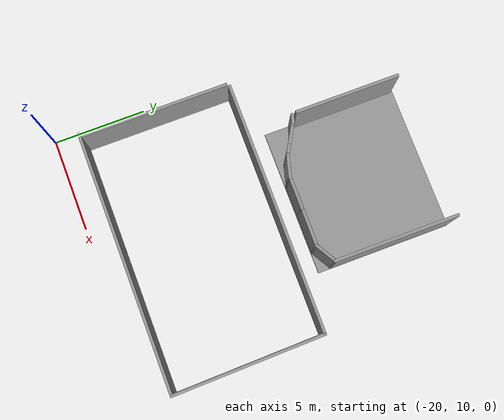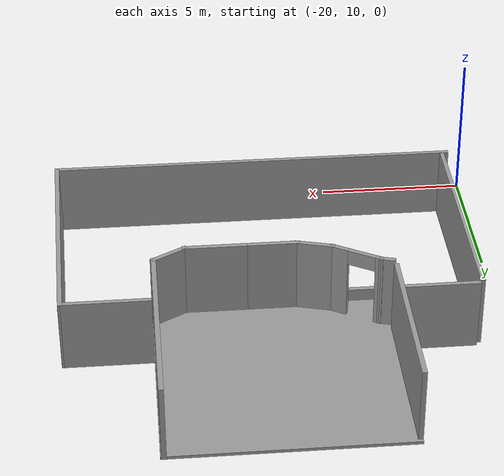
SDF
<?xml version='1.0'?>
<sdf version='1.6'>
  <model name='second_add_11'>
    <pose frame=''>-12.257 19.2956 0 0 -0 0</pose>
    <link name='Floor_3'>
      <collision name='Floor_3_Collision'>
        <geometry>
          <box>
            <size>7.43279 6.82745 0.1</size>
          </box>
        </geometry>
        <pose frame=''>0 0 0.05 0 -0 0</pose>
      </collision>
      <visual name='Floor_3_Visual'>
        <pose frame=''>0 0 0.05 0 -0 0</pose>
        <geometry>
          <box>
            <size>7.43279 6.82745 0.1</size>
          </box>
        </geometry>
        <material>
          <script>
            <uri>file://media/materials/scripts/gazebo.material</uri>
            <name>Gazebo/Grey</name>
          </script>
          <ambient>1 1 1 1</ambient>
        </material>
        <meta>
          <layer>1</layer>
        </meta>
      </visual>
      <pose frame=''>0.14842 4.41052 2.5 0 -0 0</pose>
    </link>
    <link name='Wall_12'>
      <collision name='Wall_12_Collision'>
        <geometry>
          <box>
            <size>13.5 0.15 2.5</size>
          </box>
        </geometry>
        <pose frame=''>0 0 1.25 0 -0 0</pose>
      </collision>
      <visual name='Wall_12_Visual'>
        <pose frame=''>0 0 1.25 0 -0 0</pose>
        <geometry>
          <box>
            <size>13.5 0.15 2.5</size>
          </box>
        </geometry>
        <material>
          <script>
            <uri>file://media/materials/scripts/gazebo.material</uri>
            <name>Gazebo/Grey</name>
          </script>
          <ambient>1 1 1 1</ambient>
        </material>
        <meta>
          <layer>0</layer>
        </meta>
      </visual>
      <pose frame=''>0.074673 0.243689 0 0 -0 3.14159</pose>
    </link>
    <link name='Wall_13'>
      <collision name='Wall_13_Collision'>
        <geometry>
          <box>
            <size>7.81583 0.15 2.5</size>
          </box>
        </geometry>
        <pose frame=''>0 0 1.25 0 -0 0</pose>
      </collision>
      <visual name='Wall_13_Visual'>
        <pose frame=''>0 0 1.25 0 -0 0</pose>
        <geometry>
          <box>
            <size>7.81583 0.15 2.5</size>
          </box>
        </geometry>
        <material>
          <script>
            <uri>file://media/materials/scripts/gazebo.material</uri>
            <name>Gazebo/Grey</name>
          </script>
          <ambient>1 1 1 1</ambient>
        </material>
        <meta>
          <layer>0</layer>
        </meta>
      </visual>
      <pose frame=''>-6.76307 -3.75197 0 0 -0 -1.5708</pose>
    </link>
    <link name='Wall_14'>
      <collision name='Wall_14_Collision'>
        <geometry>
          <box>
            <size>14 0.15 2.5</size>
          </box>
        </geometry>
        <pose frame=''>0 0 1.25 0 -0 0</pose>
      </collision>
      <visual name='Wall_14_Visual'>
        <pose frame=''>0 0 1.25 0 -0 0</pose>
        <geometry>
          <box>
            <size>14 0.15 2.5</size>
          </box>
        </geometry>
        <material>
          <script>
            <uri>file://media/materials/scripts/gazebo.material</uri>
            <name>Gazebo/Grey</name>
          </script>
          <ambient>1 1 1 1</ambient>
        </material>
        <meta>
          <layer>0</layer>
        </meta>
      </visual>
      <pose frame=''>-0.000809 -7.74763 0 0 -0 0</pose>
    </link>
    <link name='Wall_21'>
      <collision name='Wall_21_Collision'>
        <geometry>
          <box>
            <size>8.14322 0.15 2.5</size>
          </box>
        </geometry>
        <pose frame=''>0 0 1.25 0 -0 0</pose>
      </collision>
      <visual name='Wall_21_Visual'>
        <pose frame=''>0 0 1.25 0 -0 0</pose>
        <geometry>
          <box>
            <size>8.14322 0.15 2.5</size>
          </box>
        </geometry>
        <material>
          <script>
            <uri>file://media/materials/scripts/gazebo.material</uri>
            <name>Gazebo/Grey</name>
          </script>
          <ambient>1 1 1 1</ambient>
        </material>
        <meta>
          <layer>0</layer>
        </meta>
      </visual>
      <pose frame=''>6.83693 -3.75197 0 0 -0 -1.54896</pose>
    </link>
    <link name='Wall_59'>
      <collision name='Wall_59_Collision'>
        <geometry>
          <box>
            <size>5.25 0.15 2.5</size>
          </box>
        </geometry>
        <pose frame=''>0 0 1.25 0 -0 0</pose>
      </collision>
      <visual name='Wall_59_Visual'>
        <pose frame=''>0 0 1.25 0 -0 0</pose>
        <geometry>
          <box>
            <size>5.25 0.15 2.5</size>
          </box>
        </geometry>
        <material>
          <script>
            <uri>file://media/materials/scripts/gazebo.material</uri>
            <name>Gazebo/Grey</name>
          </script>
          <ambient>1 1 1 1</ambient>
        </material>
        <meta>
          <layer>1</layer>
        </meta>
      </visual>
      <pose frame=''>-3.49298 5.10197 2.5 0 -0 1.5708</pose>
    </link>
    <link name='Wall_62'>
      <collision name='Wall_62_Collision'>
        <geometry>
          <box>
            <size>0.5 0.15 2.5</size>
          </box>
        </geometry>
        <pose frame=''>0 0 1.25 0 -0 0</pose>
      </collision>
      <visual name='Wall_62_Visual'>
        <pose frame=''>0 0 1.25 0 -0 0</pose>
        <geometry>
          <box>
            <size>0.5 0.15 2.5</size>
          </box>
        </geometry>
        <material>
          <script>
            <uri>file://media/materials/scripts/gazebo.material</uri>
            <name>Gazebo/Grey</name>
          </script>
          <ambient>1 1 1 1</ambient>
        </material>
        <meta>
          <layer>1</layer>
        </meta>
      </visual>
      <pose frame=''>-3.25746 2.22924 2.5 0 -0 -0.261799</pose>
    </link>
    <link name='Wall_63'>
      <pose frame=''>-2.3956 1.78395 2.5 0 -0 -0.523599</pose>
      <visual name='Wall_63_Visual_0'>
        <pose frame=''>-0.74962 0 1.25 0 -0 0</pose>
        <geometry>
          <box>
            <size>0.25076 0.15 2.5</size>
          </box>
        </geometry>
        <material>
          <script>
            <uri>file://media/materials/scripts/gazebo.material</uri>
            <name>Gazebo/Grey</name>
          </script>
          <ambient>1 1 1 1</ambient>
        </material>
        <meta>
          <layer>1</layer>
        </meta>
      </visual>
      <collision name='Wall_63_Collision_0'>
        <geometry>
          <box>
            <size>0.25076 0.15 2.5</size>
          </box>
        </geometry>
        <pose frame=''>-0.74962 0 1.25 0 -0 0</pose>
      </collision>
      <visual name='Wall_63_Visual_1'>
        <pose frame=''>0.57538 0 1.25 0 -0 0</pose>
        <geometry>
          <box>
            <size>0.59924 0.15 2.5</size>
          </box>
        </geometry>
        <material>
          <script>
            <uri>file://media/materials/scripts/gazebo.material</uri>
            <name>Gazebo/Grey</name>
          </script>
          <ambient>1 1 1 1</ambient>
        </material>
        <meta>
          <layer>1</layer>
        </meta>
      </visual>
      <collision name='Wall_63_Collision_1'>
        <geometry>
          <box>
            <size>0.59924 0.15 2.5</size>
          </box>
        </geometry>
        <pose frame=''>0.57538 0 1.25 0 -0 0</pose>
      </collision>
      <visual name='Wall_63_Visual_2'>
        <pose frame=''>-0.17424 0 2.25 0 -0 0</pose>
        <geometry>
          <box>
            <size>0.9 0.15 0.5</size>
          </box>
        </geometry>
        <material>
          <script>
            <uri>file://media/materials/scripts/gazebo.material</uri>
            <name>Gazebo/Grey</name>
          </script>
          <ambient>1 1 1 1</ambient>
        </material>
        <meta>
          <layer>1</layer>
        </meta>
      </visual>
      <collision name='Wall_63_Collision_2'>
        <geometry>
          <box>
            <size>0.9 0.15 0.5</size>
          </box>
        </geometry>
        <pose frame=''>-0.17424 0 2.25 0 -0 0</pose>
      </collision>
    </link>
    <link name='Wall_64'>
      <collision name='Wall_64_Collision'>
        <geometry>
          <box>
            <size>1.25 0.15 2.5</size>
          </box>
        </geometry>
        <pose frame=''>0 0 1.25 0 -0 0</pose>
      </collision>
      <visual name='Wall_64_Visual'>
        <pose frame=''>0 0 1.25 0 -0 0</pose>
        <geometry>
          <box>
            <size>1.25 0.15 2.5</size>
          </box>
        </geometry>
        <material>
          <script>
            <uri>file://media/materials/scripts/gazebo.material</uri>
            <name>Gazebo/Grey</name>
          </script>
          <ambient>1 1 1 1</ambient>
        </material>
        <meta>
          <layer>1</layer>
        </meta>
      </visual>
      <pose frame=''>-1.17152 1.2416 2.5 0 -0 -0.261799</pose>
    </link>
    <link name='Wall_65'>
      <collision name='Wall_65_Collision'>
        <geometry>
          <box>
            <size>1.75 0.15 2.5</size>
          </box>
        </geometry>
        <pose frame=''>0 0 1.25 0 -0 0</pose>
      </collision>
      <visual name='Wall_65_Visual'>
        <pose frame=''>0 0 1.25 0 -0 0</pose>
        <geometry>
          <box>
            <size>1.75 0.15 2.5</size>
          </box>
        </geometry>
        <material>
          <script>
            <uri>file://media/materials/scripts/gazebo.material</uri>
            <name>Gazebo/Grey</name>
          </script>
          <ambient>1 1 1 1</ambient>
        </material>
        <meta>
          <layer>1</layer>
        </meta>
      </visual>
      <pose frame=''>0.159736 1.09925 2.5 0 -0 0</pose>
    </link>
    <link name='Wall_66'>
      <collision name='Wall_66_Collision'>
        <geometry>
          <box>
            <size>2 0.15 2.5</size>
          </box>
        </geometry>
        <pose frame=''>0 0 1.25 0 -0 0</pose>
      </collision>
      <visual name='Wall_66_Visual'>
        <pose frame=''>0 0 1.25 0 -0 0</pose>
        <geometry>
          <box>
            <size>2 0.15 2.5</size>
          </box>
        </geometry>
        <material>
          <script>
            <uri>file://media/materials/scripts/gazebo.material</uri>
            <name>Gazebo/Grey</name>
          </script>
          <ambient>1 1 1 1</ambient>
        </material>
        <meta>
          <layer>1</layer>
        </meta>
      </visual>
      <pose frame=''>1.88474 1.09925 2.5 0 -0 0</pose>
    </link>
    <link name='Wall_67'>
      <collision name='Wall_67_Collision'>
        <geometry>
          <box>
            <size>1.25 0.15 2.5</size>
          </box>
        </geometry>
        <pose frame=''>0 0 1.25 0 -0 0</pose>
      </collision>
      <visual name='Wall_67_Visual'>
        <pose frame=''>0 0 1.25 0 -0 0</pose>
        <geometry>
          <box>
            <size>1.25 0.15 2.5</size>
          </box>
        </geometry>
        <material>
          <script>
            <uri>file://media/materials/scripts/gazebo.material</uri>
            <name>Gazebo/Grey</name>
          </script>
          <ambient>1 1 1 1</ambient>
        </material>
        <meta>
          <layer>1</layer>
        </meta>
      </visual>
      <pose frame=''>3.28605 1.37425 2.5 0 -0 0.523599</pose>
    </link>
    <link name='Wall_68'>
      <collision name='Wall_68_Collision'>
        <geometry>
          <box>
            <size>6.25 0.15 2.5</size>
          </box>
        </geometry>
        <pose frame=''>0 0 1.25 0 -0 0</pose>
      </collision>
      <visual name='Wall_68_Visual'>
        <pose frame=''>0 0 1.25 0 -0 0</pose>
        <geometry>
          <box>
            <size>6.25 0.15 2.5</size>
          </box>
        </geometry>
        <material>
          <script>
            <uri>file://media/materials/scripts/gazebo.material</uri>
            <name>Gazebo/Grey</name>
          </script>
          <ambient>1 1 1 1</ambient>
        </material>
        <meta>
          <layer>1</layer>
        </meta>
      </visual>
      <pose frame=''>3.76236 4.69925 2.5 0 -0 1.5708</pose>
    </link>
    <static>1</static>
  </model>
</sdf>
